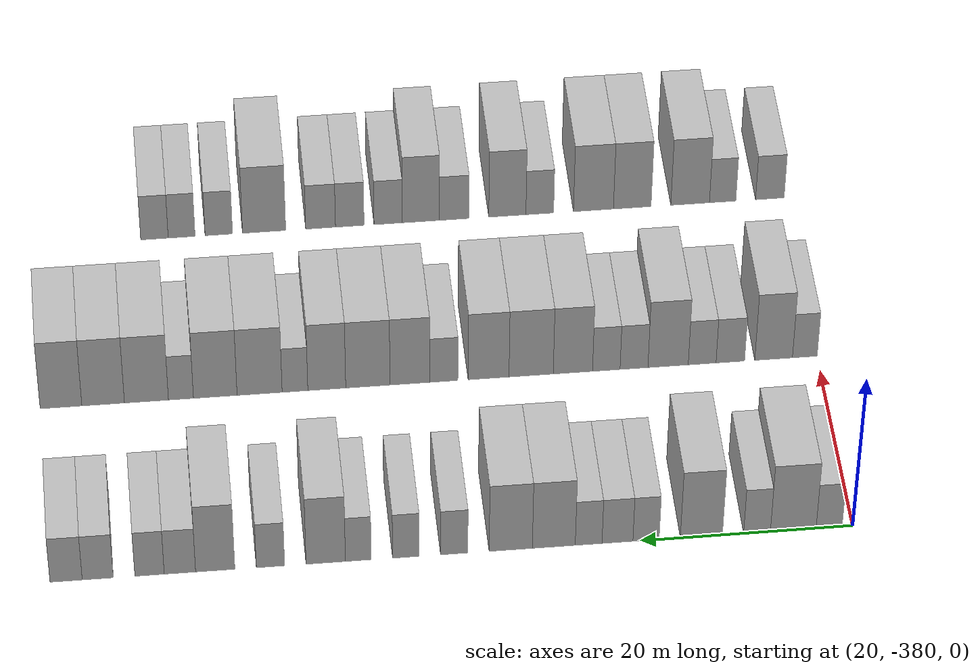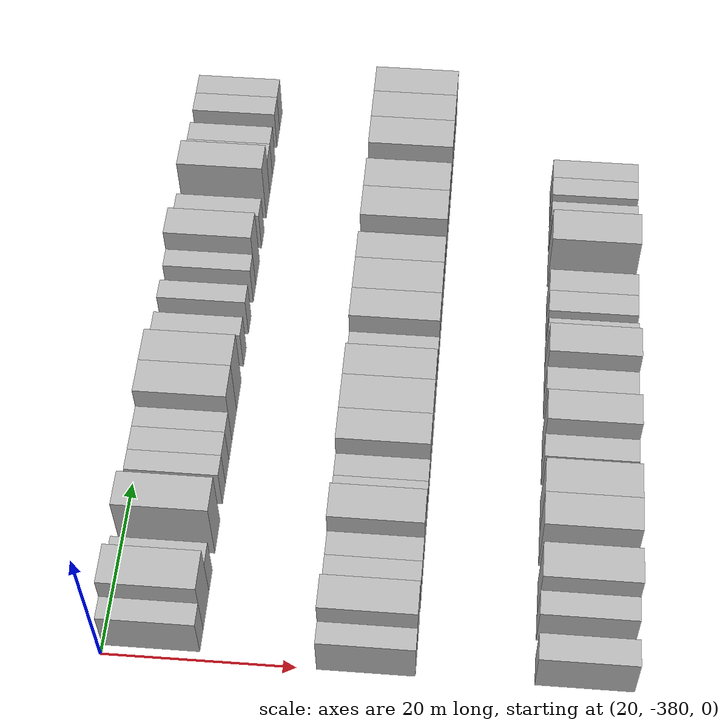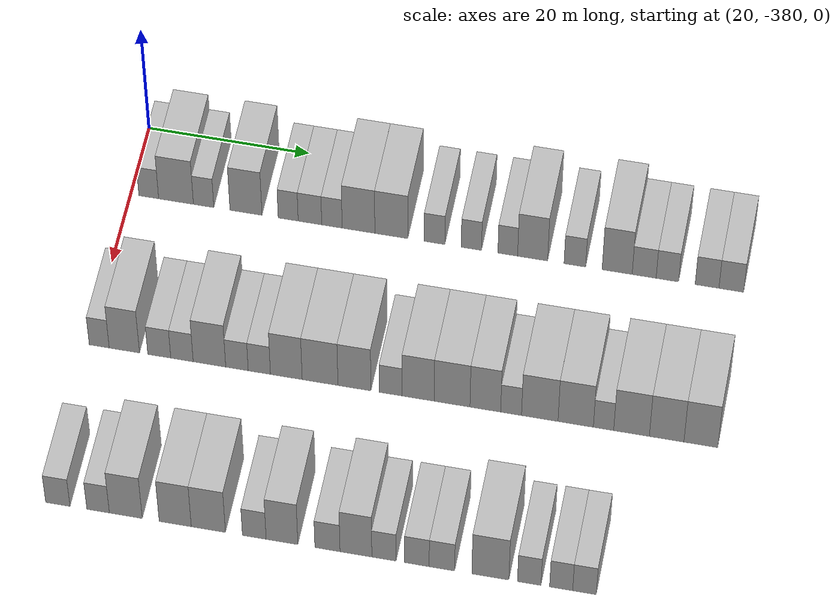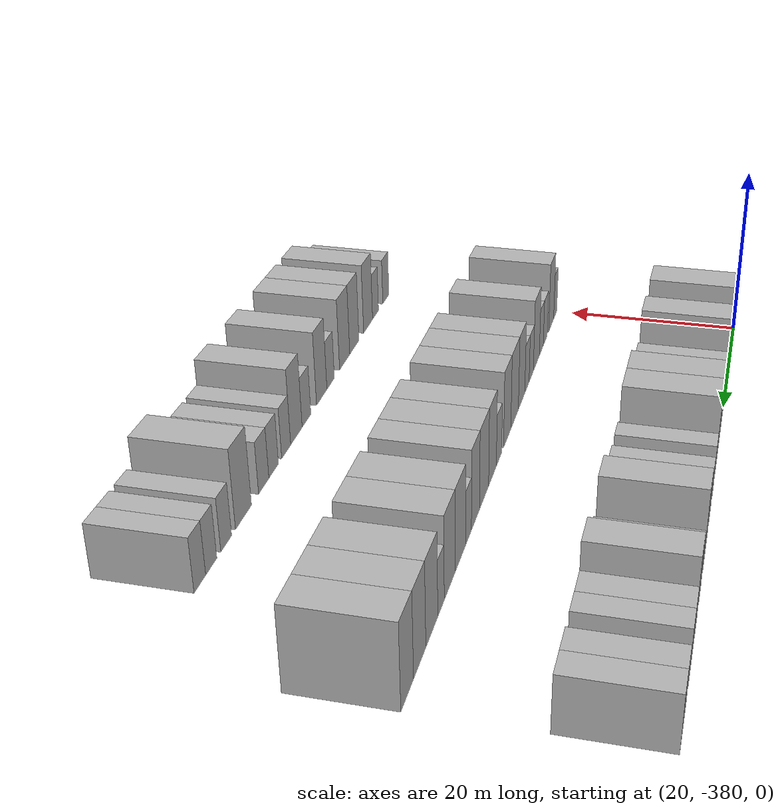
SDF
<sdf version="1.6">
 <world name="default">
  <model name="building_1">
   <static>1</static>
   <pose>25.0000 -377.7746 0 0.000000 0.000000 0.000000</pose>
   <link name="link">
    <pose>0 0 3.00 0 0 0</pose>
    <collision name="collision"><geometry><box><size>10.0000 2.4507 6.0000</size></box></geometry></collision>
    <visual name="visual">
     <cast_shadows>0</cast_shadows>
     <geometry><box><size>10.0000 2.4507 6.0000</size></box></geometry>
     <material>
      <script>
       <uri>model://HANNAS_wall/materials/scripts</uri>
       <uri>model://HANNAS_wall/materials/textures</uri>
       <name>vrc/HANNAS_wall</name>
      </script>
     </material>
    </visual>
   </link>
  </model>
  <model name="building_2">
   <static>1</static>
   <pose>25.0000 -374.3925 0 0.000000 0.000000 0.000000</pose>
   <link name="link">
    <pose>0 0 4.50 0 0 0</pose>
    <collision name="collision"><geometry><box><size>10.0000 4.3136 9.0000</size></box></geometry></collision>
    <visual name="visual">
     <cast_shadows>0</cast_shadows>
     <geometry><box><size>10.0000 4.3136 9.0000</size></box></geometry>
     <material>
      <script>
       <uri>model://HANNAS_wall/materials/scripts</uri>
       <uri>model://HANNAS_wall/materials/textures</uri>
       <name>vrc/HANNAS_wall</name>
      </script>
     </material>
    </visual>
   </link>
  </model>
  <model name="building_3">
   <static>1</static>
   <pose>25.0000 -370.9728 0 0.000000 0.000000 0.000000</pose>
   <link name="link">
    <pose>0 0 3.00 0 0 0</pose>
    <collision name="collision"><geometry><box><size>10.0000 2.5256 6.0000</size></box></geometry></collision>
    <visual name="visual">
     <cast_shadows>0</cast_shadows>
     <geometry><box><size>10.0000 2.5256 6.0000</size></box></geometry>
     <material>
      <script>
       <uri>model://HANNAS_wall/materials/scripts</uri>
       <uri>model://HANNAS_wall/materials/textures</uri>
       <name>vrc/HANNAS_wall</name>
      </script>
     </material>
    </visual>
   </link>
  </model>
  <model name="building_4">
   <static>1</static>
   <pose>25.0000 -365.7302 0 0.000000 0.000000 0.000000</pose>
   <link name="link">
    <pose>0 0 4.50 0 0 0</pose>
    <collision name="collision"><geometry><box><size>10.0000 3.9595 9.0000</size></box></geometry></collision>
    <visual name="visual">
     <cast_shadows>0</cast_shadows>
     <geometry><box><size>10.0000 3.9595 9.0000</size></box></geometry>
     <material>
      <script>
       <uri>model://HANNAS_wall/materials/scripts</uri>
       <uri>model://HANNAS_wall/materials/textures</uri>
       <name>vrc/HANNAS_wall</name>
      </script>
     </material>
    </visual>
   </link>
  </model>
  <model name="building_5">
   <static>1</static>
   <pose>25.0000 -360.5192 0 0.000000 0.000000 0.000000</pose>
   <link name="link">
    <pose>0 0 3.00 0 0 0</pose>
    <collision name="collision"><geometry><box><size>10.0000 2.4626 6.0000</size></box></geometry></collision>
    <visual name="visual">
     <cast_shadows>0</cast_shadows>
     <geometry><box><size>10.0000 2.4626 6.0000</size></box></geometry>
     <material>
      <script>
       <uri>model://HANNAS_wall/materials/scripts</uri>
       <uri>model://HANNAS_wall/materials/textures</uri>
       <name>vrc/HANNAS_wall</name>
      </script>
     </material>
    </visual>
   </link>
  </model>
  <model name="building_6">
   <static>1</static>
   <pose>25.0000 -357.8363 0 0.000000 0.000000 0.000000</pose>
   <link name="link">
    <pose>0 0 3.00 0 0 0</pose>
    <collision name="collision"><geometry><box><size>10.0000 2.9032 6.0000</size></box></geometry></collision>
    <visual name="visual">
     <cast_shadows>0</cast_shadows>
     <geometry><box><size>10.0000 2.9032 6.0000</size></box></geometry>
     <material>
      <script>
       <uri>model://HANNAS_wall/materials/scripts</uri>
       <uri>model://HANNAS_wall/materials/textures</uri>
       <name>vrc/HANNAS_wall</name>
      </script>
     </material>
    </visual>
   </link>
  </model>
  <model name="building_7">
   <static>1</static>
   <pose>25.0000 -355.1290 0 0.000000 0.000000 0.000000</pose>
   <link name="link">
    <pose>0 0 3.00 0 0 0</pose>
    <collision name="collision"><geometry><box><size>10.0000 2.5115 6.0000</size></box></geometry></collision>
    <visual name="visual">
     <cast_shadows>0</cast_shadows>
     <geometry><box><size>10.0000 2.5115 6.0000</size></box></geometry>
     <material>
      <script>
       <uri>model://HANNAS_wall/materials/scripts</uri>
       <uri>model://HANNAS_wall/materials/textures</uri>
       <name>vrc/HANNAS_wall</name>
      </script>
     </material>
    </visual>
   </link>
  </model>
  <model name="building_8">
   <static>1</static>
   <pose>25.0000 -351.8616 0 0.000000 0.000000 0.000000</pose>
   <link name="link">
    <pose>0 0 4.50 0 0 0</pose>
    <collision name="collision"><geometry><box><size>10.0000 4.0233 9.0000</size></box></geometry></collision>
    <visual name="visual">
     <cast_shadows>0</cast_shadows>
     <geometry><box><size>10.0000 4.0233 9.0000</size></box></geometry>
     <material>
      <script>
       <uri>model://HANNAS_wall/materials/scripts</uri>
       <uri>model://HANNAS_wall/materials/textures</uri>
       <name>vrc/HANNAS_wall</name>
      </script>
     </material>
    </visual>
   </link>
  </model>
  <model name="building_9">
   <static>1</static>
   <pose>25.0000 -347.8291 0 0.000000 0.000000 0.000000</pose>
   <link name="link">
    <pose>0 0 4.50 0 0 0</pose>
    <collision name="collision"><geometry><box><size>10.0000 4.0415 9.0000</size></box></geometry></collision>
    <visual name="visual">
     <cast_shadows>0</cast_shadows>
     <geometry><box><size>10.0000 4.0415 9.0000</size></box></geometry>
     <material>
      <script>
       <uri>model://HANNAS_wall/materials/scripts</uri>
       <uri>model://HANNAS_wall/materials/textures</uri>
       <name>vrc/HANNAS_wall</name>
      </script>
     </material>
    </visual>
   </link>
  </model>
  <model name="building_10">
   <static>1</static>
   <pose>25.0000 -342.5372 0 0.000000 0.000000 0.000000</pose>
   <link name="link">
    <pose>0 0 3.00 0 0 0</pose>
    <collision name="collision"><geometry><box><size>10.0000 2.5423 6.0000</size></box></geometry></collision>
    <visual name="visual">
     <cast_shadows>0</cast_shadows>
     <geometry><box><size>10.0000 2.5423 6.0000</size></box></geometry>
     <material>
      <script>
       <uri>model://HANNAS_wall/materials/scripts</uri>
       <uri>model://HANNAS_wall/materials/textures</uri>
       <name>vrc/HANNAS_wall</name>
      </script>
     </material>
    </visual>
   </link>
  </model>
  <model name="building_11">
   <static>1</static>
   <pose>25.0000 -338.0257 0 0.000000 0.000000 0.000000</pose>
   <link name="link">
    <pose>0 0 3.00 0 0 0</pose>
    <collision name="collision"><geometry><box><size>10.0000 2.4809 6.0000</size></box></geometry></collision>
    <visual name="visual">
     <cast_shadows>0</cast_shadows>
     <geometry><box><size>10.0000 2.4809 6.0000</size></box></geometry>
     <material>
      <script>
       <uri>model://HANNAS_wall/materials/scripts</uri>
       <uri>model://HANNAS_wall/materials/textures</uri>
       <name>vrc/HANNAS_wall</name>
      </script>
     </material>
    </visual>
   </link>
  </model>
  <model name="building_12">
   <static>1</static>
   <pose>25.0000 -333.5848 0 0.000000 0.000000 0.000000</pose>
   <link name="link">
    <pose>0 0 3.00 0 0 0</pose>
    <collision name="collision"><geometry><box><size>10.0000 2.4009 6.0000</size></box></geometry></collision>
    <visual name="visual">
     <cast_shadows>0</cast_shadows>
     <geometry><box><size>10.0000 2.4009 6.0000</size></box></geometry>
     <material>
      <script>
       <uri>model://HANNAS_wall/materials/scripts</uri>
       <uri>model://HANNAS_wall/materials/textures</uri>
       <name>vrc/HANNAS_wall</name>
      </script>
     </material>
    </visual>
   </link>
  </model>
  <model name="building_13">
   <static>1</static>
   <pose>25.0000 -330.5529 0 0.000000 0.000000 0.000000</pose>
   <link name="link">
    <pose>0 0 4.50 0 0 0</pose>
    <collision name="collision"><geometry><box><size>10.0000 3.6629 9.0000</size></box></geometry></collision>
    <visual name="visual">
     <cast_shadows>0</cast_shadows>
     <geometry><box><size>10.0000 3.6629 9.0000</size></box></geometry>
     <material>
      <script>
       <uri>model://HANNAS_wall/materials/scripts</uri>
       <uri>model://HANNAS_wall/materials/textures</uri>
       <name>vrc/HANNAS_wall</name>
      </script>
     </material>
    </visual>
   </link>
  </model>
  <model name="building_14">
   <static>1</static>
   <pose>25.0000 -325.4087 0 0.000000 0.000000 0.000000</pose>
   <link name="link">
    <pose>0 0 3.00 0 0 0</pose>
    <collision name="collision"><geometry><box><size>10.0000 2.6254 6.0000</size></box></geometry></collision>
    <visual name="visual">
     <cast_shadows>0</cast_shadows>
     <geometry><box><size>10.0000 2.6254 6.0000</size></box></geometry>
     <material>
      <script>
       <uri>model://HANNAS_wall/materials/scripts</uri>
       <uri>model://HANNAS_wall/materials/textures</uri>
       <name>vrc/HANNAS_wall</name>
      </script>
     </material>
    </visual>
   </link>
  </model>
  <model name="building_15">
   <static>1</static>
   <pose>25.0000 -320.2736 0 0.000000 0.000000 0.000000</pose>
   <link name="link">
    <pose>0 0 4.50 0 0 0</pose>
    <collision name="collision"><geometry><box><size>10.0000 3.6449 9.0000</size></box></geometry></collision>
    <visual name="visual">
     <cast_shadows>0</cast_shadows>
     <geometry><box><size>10.0000 3.6449 9.0000</size></box></geometry>
     <material>
      <script>
       <uri>model://HANNAS_wall/materials/scripts</uri>
       <uri>model://HANNAS_wall/materials/textures</uri>
       <name>vrc/HANNAS_wall</name>
      </script>
     </material>
    </visual>
   </link>
  </model>
  <model name="building_16">
   <static>1</static>
   <pose>25.0000 -316.9975 0 0.000000 0.000000 0.000000</pose>
   <link name="link">
    <pose>0 0 3.00 0 0 0</pose>
    <collision name="collision"><geometry><box><size>10.0000 2.9072 6.0000</size></box></geometry></collision>
    <visual name="visual">
     <cast_shadows>0</cast_shadows>
     <geometry><box><size>10.0000 2.9072 6.0000</size></box></geometry>
     <material>
      <script>
       <uri>model://HANNAS_wall/materials/scripts</uri>
       <uri>model://HANNAS_wall/materials/textures</uri>
       <name>vrc/HANNAS_wall</name>
      </script>
     </material>
    </visual>
   </link>
  </model>
  <model name="building_17">
   <static>1</static>
   <pose>25.0000 -314.1845 0 0.000000 0.000000 0.000000</pose>
   <link name="link">
    <pose>0 0 3.00 0 0 0</pose>
    <collision name="collision"><geometry><box><size>10.0000 2.7188 6.0000</size></box></geometry></collision>
    <visual name="visual">
     <cast_shadows>0</cast_shadows>
     <geometry><box><size>10.0000 2.7188 6.0000</size></box></geometry>
     <material>
      <script>
       <uri>model://HANNAS_wall/materials/scripts</uri>
       <uri>model://HANNAS_wall/materials/textures</uri>
       <name>vrc/HANNAS_wall</name>
      </script>
     </material>
    </visual>
   </link>
  </model>
  <model name="building_18">
   <static>1</static>
   <pose>25.0000 -309.3861 0 0.000000 0.000000 0.000000</pose>
   <link name="link">
    <pose>0 0 3.00 0 0 0</pose>
    <collision name="collision"><geometry><box><size>10.0000 2.8779 6.0000</size></box></geometry></collision>
    <visual name="visual">
     <cast_shadows>0</cast_shadows>
     <geometry><box><size>10.0000 2.8779 6.0000</size></box></geometry>
     <material>
      <script>
       <uri>model://HANNAS_wall/materials/scripts</uri>
       <uri>model://HANNAS_wall/materials/textures</uri>
       <name>vrc/HANNAS_wall</name>
      </script>
     </material>
    </visual>
   </link>
  </model>
  <model name="building_19">
   <static>1</static>
   <pose>25.0000 -306.4580 0 0.000000 0.000000 0.000000</pose>
   <link name="link">
    <pose>0 0 3.00 0 0 0</pose>
    <collision name="collision"><geometry><box><size>10.0000 2.9784 6.0000</size></box></geometry></collision>
    <visual name="visual">
     <cast_shadows>0</cast_shadows>
     <geometry><box><size>10.0000 2.9784 6.0000</size></box></geometry>
     <material>
      <script>
       <uri>model://HANNAS_wall/materials/scripts</uri>
       <uri>model://HANNAS_wall/materials/textures</uri>
       <name>vrc/HANNAS_wall</name>
      </script>
     </material>
    </visual>
   </link>
  </model>
  <model name="building_191">
   <static>1</static>
   <pose>47.0000 -378.7895 0 0.000000 0.000000 0.000000</pose>
   <link name="link">
    <pose>0 0 3.00 0 0 0</pose>
    <collision name="collision"><geometry><box><size>10.0000 2.4209 6.0000</size></box></geometry></collision>
    <visual name="visual">
     <cast_shadows>0</cast_shadows>
     <geometry><box><size>10.0000 2.4209 6.0000</size></box></geometry>
     <material>
      <script>
       <uri>model://HANNAS_wall/materials/scripts</uri>
       <uri>model://HANNAS_wall/materials/textures</uri>
       <name>vrc/HANNAS_wall</name>
      </script>
     </material>
    </visual>
   </link>
  </model>
  <model name="building_192">
   <static>1</static>
   <pose>47.0000 -375.7392 0 0.000000 0.000000 0.000000</pose>
   <link name="link">
    <pose>0 0 4.50 0 0 0</pose>
    <collision name="collision"><geometry><box><size>10.0000 3.6797 9.0000</size></box></geometry></collision>
    <visual name="visual">
     <cast_shadows>0</cast_shadows>
     <geometry><box><size>10.0000 3.6797 9.0000</size></box></geometry>
     <material>
      <script>
       <uri>model://HANNAS_wall/materials/scripts</uri>
       <uri>model://HANNAS_wall/materials/textures</uri>
       <name>vrc/HANNAS_wall</name>
      </script>
     </material>
    </visual>
   </link>
  </model>
  <model name="building_193">
   <static>1</static>
   <pose>47.0000 -371.5059 0 0.000000 0.000000 0.000000</pose>
   <link name="link">
    <pose>0 0 3.00 0 0 0</pose>
    <collision name="collision"><geometry><box><size>10.0000 2.7868 6.0000</size></box></geometry></collision>
    <visual name="visual">
     <cast_shadows>0</cast_shadows>
     <geometry><box><size>10.0000 2.7868 6.0000</size></box></geometry>
     <material>
      <script>
       <uri>model://HANNAS_wall/materials/scripts</uri>
       <uri>model://HANNAS_wall/materials/textures</uri>
       <name>vrc/HANNAS_wall</name>
      </script>
     </material>
    </visual>
   </link>
  </model>
  <model name="building_194">
   <static>1</static>
   <pose>47.0000 -368.7560 0 0.000000 0.000000 0.000000</pose>
   <link name="link">
    <pose>0 0 3.00 0 0 0</pose>
    <collision name="collision"><geometry><box><size>10.0000 2.7129 6.0000</size></box></geometry></collision>
    <visual name="visual">
     <cast_shadows>0</cast_shadows>
     <geometry><box><size>10.0000 2.7129 6.0000</size></box></geometry>
     <material>
      <script>
       <uri>model://HANNAS_wall/materials/scripts</uri>
       <uri>model://HANNAS_wall/materials/textures</uri>
       <name>vrc/HANNAS_wall</name>
      </script>
     </material>
    </visual>
   </link>
  </model>
  <model name="building_195">
   <static>1</static>
   <pose>47.0000 -365.4335 0 0.000000 0.000000 0.000000</pose>
   <link name="link">
    <pose>0 0 4.50 0 0 0</pose>
    <collision name="collision"><geometry><box><size>10.0000 3.9321 9.0000</size></box></geometry></collision>
    <visual name="visual">
     <cast_shadows>0</cast_shadows>
     <geometry><box><size>10.0000 3.9321 9.0000</size></box></geometry>
     <material>
      <script>
       <uri>model://HANNAS_wall/materials/scripts</uri>
       <uri>model://HANNAS_wall/materials/textures</uri>
       <name>vrc/HANNAS_wall</name>
      </script>
     </material>
    </visual>
   </link>
  </model>
  <model name="building_196">
   <static>1</static>
   <pose>47.0000 -362.1093 0 0.000000 0.000000 0.000000</pose>
   <link name="link">
    <pose>0 0 3.00 0 0 0</pose>
    <collision name="collision"><geometry><box><size>10.0000 2.7163 6.0000</size></box></geometry></collision>
    <visual name="visual">
     <cast_shadows>0</cast_shadows>
     <geometry><box><size>10.0000 2.7163 6.0000</size></box></geometry>
     <material>
      <script>
       <uri>model://HANNAS_wall/materials/scripts</uri>
       <uri>model://HANNAS_wall/materials/textures</uri>
       <name>vrc/HANNAS_wall</name>
      </script>
     </material>
    </visual>
   </link>
  </model>
  <model name="building_197">
   <static>1</static>
   <pose>47.0000 -359.4117 0 0.000000 0.000000 0.000000</pose>
   <link name="link">
    <pose>0 0 3.00 0 0 0</pose>
    <collision name="collision"><geometry><box><size>10.0000 2.6789 6.0000</size></box></geometry></collision>
    <visual name="visual">
     <cast_shadows>0</cast_shadows>
     <geometry><box><size>10.0000 2.6789 6.0000</size></box></geometry>
     <material>
      <script>
       <uri>model://HANNAS_wall/materials/scripts</uri>
       <uri>model://HANNAS_wall/materials/textures</uri>
       <name>vrc/HANNAS_wall</name>
      </script>
     </material>
    </visual>
   </link>
  </model>
  <model name="building_198">
   <static>1</static>
   <pose>47.0000 -356.1617 0 0.000000 0.000000 0.000000</pose>
   <link name="link">
    <pose>0 0 4.50 0 0 0</pose>
    <collision name="collision"><geometry><box><size>10.0000 3.8210 9.0000</size></box></geometry></collision>
    <visual name="visual">
     <cast_shadows>0</cast_shadows>
     <geometry><box><size>10.0000 3.8210 9.0000</size></box></geometry>
     <material>
      <script>
       <uri>model://HANNAS_wall/materials/scripts</uri>
       <uri>model://HANNAS_wall/materials/textures</uri>
       <name>vrc/HANNAS_wall</name>
      </script>
     </material>
    </visual>
   </link>
  </model>
  <model name="building_199">
   <static>1</static>
   <pose>47.0000 -352.1010 0 0.000000 0.000000 0.000000</pose>
   <link name="link">
    <pose>0 0 4.50 0 0 0</pose>
    <collision name="collision"><geometry><box><size>10.0000 4.3005 9.0000</size></box></geometry></collision>
    <visual name="visual">
     <cast_shadows>0</cast_shadows>
     <geometry><box><size>10.0000 4.3005 9.0000</size></box></geometry>
     <material>
      <script>
       <uri>model://HANNAS_wall/materials/scripts</uri>
       <uri>model://HANNAS_wall/materials/textures</uri>
       <name>vrc/HANNAS_wall</name>
      </script>
     </material>
    </visual>
   </link>
  </model>
  <model name="building_200">
   <static>1</static>
   <pose>47.0000 -347.9721 0 0.000000 0.000000 0.000000</pose>
   <link name="link">
    <pose>0 0 4.50 0 0 0</pose>
    <collision name="collision"><geometry><box><size>10.0000 3.9573 9.0000</size></box></geometry></collision>
    <visual name="visual">
     <cast_shadows>0</cast_shadows>
     <geometry><box><size>10.0000 3.9573 9.0000</size></box></geometry>
     <material>
      <script>
       <uri>model://HANNAS_wall/materials/scripts</uri>
       <uri>model://HANNAS_wall/materials/textures</uri>
       <name>vrc/HANNAS_wall</name>
      </script>
     </material>
    </visual>
   </link>
  </model>
  <model name="building_201">
   <static>1</static>
   <pose>47.0000 -343.6298 0 0.000000 0.000000 0.000000</pose>
   <link name="link">
    <pose>0 0 3.00 0 0 0</pose>
    <collision name="collision"><geometry><box><size>10.0000 2.7273 6.0000</size></box></geometry></collision>
    <visual name="visual">
     <cast_shadows>0</cast_shadows>
     <geometry><box><size>10.0000 2.7273 6.0000</size></box></geometry>
     <material>
      <script>
       <uri>model://HANNAS_wall/materials/scripts</uri>
       <uri>model://HANNAS_wall/materials/textures</uri>
       <name>vrc/HANNAS_wall</name>
      </script>
     </material>
    </visual>
   </link>
  </model>
  <model name="building_202">
   <static>1</static>
   <pose>47.0000 -340.3457 0 0.000000 0.000000 0.000000</pose>
   <link name="link">
    <pose>0 0 4.50 0 0 0</pose>
    <collision name="collision"><geometry><box><size>10.0000 3.8408 9.0000</size></box></geometry></collision>
    <visual name="visual">
     <cast_shadows>0</cast_shadows>
     <geometry><box><size>10.0000 3.8408 9.0000</size></box></geometry>
     <material>
      <script>
       <uri>model://HANNAS_wall/materials/scripts</uri>
       <uri>model://HANNAS_wall/materials/textures</uri>
       <name>vrc/HANNAS_wall</name>
      </script>
     </material>
    </visual>
   </link>
  </model>
  <model name="building_203">
   <static>1</static>
   <pose>47.0000 -336.2853 0 0.000000 0.000000 0.000000</pose>
   <link name="link">
    <pose>0 0 4.50 0 0 0</pose>
    <collision name="collision"><geometry><box><size>10.0000 4.2800 9.0000</size></box></geometry></collision>
    <visual name="visual">
     <cast_shadows>0</cast_shadows>
     <geometry><box><size>10.0000 4.2800 9.0000</size></box></geometry>
     <material>
      <script>
       <uri>model://HANNAS_wall/materials/scripts</uri>
       <uri>model://HANNAS_wall/materials/textures</uri>
       <name>vrc/HANNAS_wall</name>
      </script>
     </material>
    </visual>
   </link>
  </model>
  <model name="building_204">
   <static>1</static>
   <pose>47.0000 -332.3157 0 0.000000 0.000000 0.000000</pose>
   <link name="link">
    <pose>0 0 4.50 0 0 0</pose>
    <collision name="collision"><geometry><box><size>10.0000 3.6591 9.0000</size></box></geometry></collision>
    <visual name="visual">
     <cast_shadows>0</cast_shadows>
     <geometry><box><size>10.0000 3.6591 9.0000</size></box></geometry>
     <material>
      <script>
       <uri>model://HANNAS_wall/materials/scripts</uri>
       <uri>model://HANNAS_wall/materials/textures</uri>
       <name>vrc/HANNAS_wall</name>
      </script>
     </material>
    </visual>
   </link>
  </model>
  <model name="building_205">
   <static>1</static>
   <pose>47.0000 -329.2459 0 0.000000 0.000000 0.000000</pose>
   <link name="link">
    <pose>0 0 3.00 0 0 0</pose>
    <collision name="collision"><geometry><box><size>10.0000 2.4806 6.0000</size></box></geometry></collision>
    <visual name="visual">
     <cast_shadows>0</cast_shadows>
     <geometry><box><size>10.0000 2.4806 6.0000</size></box></geometry>
     <material>
      <script>
       <uri>model://HANNAS_wall/materials/scripts</uri>
       <uri>model://HANNAS_wall/materials/textures</uri>
       <name>vrc/HANNAS_wall</name>
      </script>
     </material>
    </visual>
   </link>
  </model>
  <model name="building_206">
   <static>1</static>
   <pose>47.0000 -325.8342 0 0.000000 0.000000 0.000000</pose>
   <link name="link">
    <pose>0 0 4.50 0 0 0</pose>
    <collision name="collision"><geometry><box><size>10.0000 4.3428 9.0000</size></box></geometry></collision>
    <visual name="visual">
     <cast_shadows>0</cast_shadows>
     <geometry><box><size>10.0000 4.3428 9.0000</size></box></geometry>
     <material>
      <script>
       <uri>model://HANNAS_wall/materials/scripts</uri>
       <uri>model://HANNAS_wall/materials/textures</uri>
       <name>vrc/HANNAS_wall</name>
      </script>
     </material>
    </visual>
   </link>
  </model>
  <model name="building_207">
   <static>1</static>
   <pose>47.0000 -321.5636 0 0.000000 0.000000 0.000000</pose>
   <link name="link">
    <pose>0 0 4.50 0 0 0</pose>
    <collision name="collision"><geometry><box><size>10.0000 4.1983 9.0000</size></box></geometry></collision>
    <visual name="visual">
     <cast_shadows>0</cast_shadows>
     <geometry><box><size>10.0000 4.1983 9.0000</size></box></geometry>
     <material>
      <script>
       <uri>model://HANNAS_wall/materials/scripts</uri>
       <uri>model://HANNAS_wall/materials/textures</uri>
       <name>vrc/HANNAS_wall</name>
      </script>
     </material>
    </visual>
   </link>
  </model>
  <model name="building_208">
   <static>1</static>
   <pose>47.0000 -318.2620 0 0.000000 0.000000 0.000000</pose>
   <link name="link">
    <pose>0 0 3.00 0 0 0</pose>
    <collision name="collision"><geometry><box><size>10.0000 2.4049 6.0000</size></box></geometry></collision>
    <visual name="visual">
     <cast_shadows>0</cast_shadows>
     <geometry><box><size>10.0000 2.4049 6.0000</size></box></geometry>
     <material>
      <script>
       <uri>model://HANNAS_wall/materials/scripts</uri>
       <uri>model://HANNAS_wall/materials/textures</uri>
       <name>vrc/HANNAS_wall</name>
      </script>
     </material>
    </visual>
   </link>
  </model>
  <model name="building_209">
   <static>1</static>
   <pose>47.0000 -314.9466 0 0.000000 0.000000 0.000000</pose>
   <link name="link">
    <pose>0 0 4.50 0 0 0</pose>
    <collision name="collision"><geometry><box><size>10.0000 4.2259 9.0000</size></box></geometry></collision>
    <visual name="visual">
     <cast_shadows>0</cast_shadows>
     <geometry><box><size>10.0000 4.2259 9.0000</size></box></geometry>
     <material>
      <script>
       <uri>model://HANNAS_wall/materials/scripts</uri>
       <uri>model://HANNAS_wall/materials/textures</uri>
       <name>vrc/HANNAS_wall</name>
      </script>
     </material>
    </visual>
   </link>
  </model>
  <model name="building_210">
   <static>1</static>
   <pose>47.0000 -310.7907 0 0.000000 0.000000 0.000000</pose>
   <link name="link">
    <pose>0 0 4.50 0 0 0</pose>
    <collision name="collision"><geometry><box><size>10.0000 4.0861 9.0000</size></box></geometry></collision>
    <visual name="visual">
     <cast_shadows>0</cast_shadows>
     <geometry><box><size>10.0000 4.0861 9.0000</size></box></geometry>
     <material>
      <script>
       <uri>model://HANNAS_wall/materials/scripts</uri>
       <uri>model://HANNAS_wall/materials/textures</uri>
       <name>vrc/HANNAS_wall</name>
      </script>
     </material>
    </visual>
   </link>
  </model>
  <model name="building_211">
   <static>1</static>
   <pose>47.0000 -306.7496 0 0.000000 0.000000 0.000000</pose>
   <link name="link">
    <pose>0 0 4.50 0 0 0</pose>
    <collision name="collision"><geometry><box><size>10.0000 3.9961 9.0000</size></box></geometry></collision>
    <visual name="visual">
     <cast_shadows>0</cast_shadows>
     <geometry><box><size>10.0000 3.9961 9.0000</size></box></geometry>
     <material>
      <script>
       <uri>model://HANNAS_wall/materials/scripts</uri>
       <uri>model://HANNAS_wall/materials/textures</uri>
       <name>vrc/HANNAS_wall</name>
      </script>
     </material>
    </visual>
   </link>
  </model>
  <model name="building_376">
   <static>1</static>
   <pose>69.0000 -378.5574 0 0.000000 0.000000 0.000000</pose>
   <link name="link">
    <pose>0 0 3.00 0 0 0</pose>
    <collision name="collision"><geometry><box><size>10.0000 2.8852 6.0000</size></box></geometry></collision>
    <visual name="visual">
     <cast_shadows>0</cast_shadows>
     <geometry><box><size>10.0000 2.8852 6.0000</size></box></geometry>
     <material>
      <script>
       <uri>model://HANNAS_wall/materials/scripts</uri>
       <uri>model://HANNAS_wall/materials/textures</uri>
       <name>vrc/HANNAS_wall</name>
      </script>
     </material>
    </visual>
   </link>
  </model>
  <model name="building_377">
   <static>1</static>
   <pose>69.0000 -373.7817 0 0.000000 0.000000 0.000000</pose>
   <link name="link">
    <pose>0 0 3.00 0 0 0</pose>
    <collision name="collision"><geometry><box><size>10.0000 2.6663 6.0000</size></box></geometry></collision>
    <visual name="visual">
     <cast_shadows>0</cast_shadows>
     <geometry><box><size>10.0000 2.6663 6.0000</size></box></geometry>
     <material>
      <script>
       <uri>model://HANNAS_wall/materials/scripts</uri>
       <uri>model://HANNAS_wall/materials/textures</uri>
       <name>vrc/HANNAS_wall</name>
      </script>
     </material>
    </visual>
   </link>
  </model>
  <model name="building_378">
   <static>1</static>
   <pose>69.0000 -370.4988 0 0.000000 0.000000 0.000000</pose>
   <link name="link">
    <pose>0 0 4.50 0 0 0</pose>
    <collision name="collision"><geometry><box><size>10.0000 3.8993 9.0000</size></box></geometry></collision>
    <visual name="visual">
     <cast_shadows>0</cast_shadows>
     <geometry><box><size>10.0000 3.8993 9.0000</size></box></geometry>
     <material>
      <script>
       <uri>model://HANNAS_wall/materials/scripts</uri>
       <uri>model://HANNAS_wall/materials/textures</uri>
       <name>vrc/HANNAS_wall</name>
      </script>
     </material>
    </visual>
   </link>
  </model>
  <model name="building_379">
   <static>1</static>
   <pose>69.0000 -364.6531 0 0.000000 0.000000 0.000000</pose>
   <link name="link">
    <pose>0 0 4.50 0 0 0</pose>
    <collision name="collision"><geometry><box><size>10.0000 3.7922 9.0000</size></box></geometry></collision>
    <visual name="visual">
     <cast_shadows>0</cast_shadows>
     <geometry><box><size>10.0000 3.7922 9.0000</size></box></geometry>
     <material>
      <script>
       <uri>model://HANNAS_wall/materials/scripts</uri>
       <uri>model://HANNAS_wall/materials/textures</uri>
       <name>vrc/HANNAS_wall</name>
      </script>
     </material>
    </visual>
   </link>
  </model>
  <model name="building_380">
   <static>1</static>
   <pose>69.0000 -360.7429 0 0.000000 0.000000 0.000000</pose>
   <link name="link">
    <pose>0 0 4.50 0 0 0</pose>
    <collision name="collision"><geometry><box><size>10.0000 4.0283 9.0000</size></box></geometry></collision>
    <visual name="visual">
     <cast_shadows>0</cast_shadows>
     <geometry><box><size>10.0000 4.0283 9.0000</size></box></geometry>
     <material>
      <script>
       <uri>model://HANNAS_wall/materials/scripts</uri>
       <uri>model://HANNAS_wall/materials/textures</uri>
       <name>vrc/HANNAS_wall</name>
      </script>
     </material>
    </visual>
   </link>
  </model>
  <model name="building_381">
   <static>1</static>
   <pose>69.0000 -355.3356 0 0.000000 0.000000 0.000000</pose>
   <link name="link">
    <pose>0 0 3.00 0 0 0</pose>
    <collision name="collision"><geometry><box><size>10.0000 2.7863 6.0000</size></box></geometry></collision>
    <visual name="visual">
     <cast_shadows>0</cast_shadows>
     <geometry><box><size>10.0000 2.7863 6.0000</size></box></geometry>
     <material>
      <script>
       <uri>model://HANNAS_wall/materials/scripts</uri>
       <uri>model://HANNAS_wall/materials/textures</uri>
       <name>vrc/HANNAS_wall</name>
      </script>
     </material>
    </visual>
   </link>
  </model>
  <model name="building_382">
   <static>1</static>
   <pose>69.0000 -352.0781 0 0.000000 0.000000 0.000000</pose>
   <link name="link">
    <pose>0 0 4.50 0 0 0</pose>
    <collision name="collision"><geometry><box><size>10.0000 3.7285 9.0000</size></box></geometry></collision>
    <visual name="visual">
     <cast_shadows>0</cast_shadows>
     <geometry><box><size>10.0000 3.7285 9.0000</size></box></geometry>
     <material>
      <script>
       <uri>model://HANNAS_wall/materials/scripts</uri>
       <uri>model://HANNAS_wall/materials/textures</uri>
       <name>vrc/HANNAS_wall</name>
      </script>
     </material>
    </visual>
   </link>
  </model>
  <model name="building_383">
   <static>1</static>
   <pose>69.0000 -346.7433 0 0.000000 0.000000 0.000000</pose>
   <link name="link">
    <pose>0 0 3.00 0 0 0</pose>
    <collision name="collision"><geometry><box><size>10.0000 2.9411 6.0000</size></box></geometry></collision>
    <visual name="visual">
     <cast_shadows>0</cast_shadows>
     <geometry><box><size>10.0000 2.9411 6.0000</size></box></geometry>
     <material>
      <script>
       <uri>model://HANNAS_wall/materials/scripts</uri>
       <uri>model://HANNAS_wall/materials/textures</uri>
       <name>vrc/HANNAS_wall</name>
      </script>
     </material>
    </visual>
   </link>
  </model>
  <model name="building_384">
   <static>1</static>
   <pose>69.0000 -343.4083 0 0.000000 0.000000 0.000000</pose>
   <link name="link">
    <pose>0 0 4.50 0 0 0</pose>
    <collision name="collision"><geometry><box><size>10.0000 3.7291 9.0000</size></box></geometry></collision>
    <visual name="visual">
     <cast_shadows>0</cast_shadows>
     <geometry><box><size>10.0000 3.7291 9.0000</size></box></geometry>
     <material>
      <script>
       <uri>model://HANNAS_wall/materials/scripts</uri>
       <uri>model://HANNAS_wall/materials/textures</uri>
       <name>vrc/HANNAS_wall</name>
      </script>
     </material>
    </visual>
   </link>
  </model>
  <model name="building_385">
   <static>1</static>
   <pose>69.0000 -340.1259 0 0.000000 0.000000 0.000000</pose>
   <link name="link">
    <pose>0 0 3.00 0 0 0</pose>
    <collision name="collision"><geometry><box><size>10.0000 2.8356 6.0000</size></box></geometry></collision>
    <visual name="visual">
     <cast_shadows>0</cast_shadows>
     <geometry><box><size>10.0000 2.8356 6.0000</size></box></geometry>
     <material>
      <script>
       <uri>model://HANNAS_wall/materials/scripts</uri>
       <uri>model://HANNAS_wall/materials/textures</uri>
       <name>vrc/HANNAS_wall</name>
      </script>
     </material>
    </visual>
   </link>
  </model>
  <model name="building_386">
   <static>1</static>
   <pose>69.0000 -336.2796 0 0.000000 0.000000 0.000000</pose>
   <link name="link">
    <pose>0 0 3.00 0 0 0</pose>
    <collision name="collision"><geometry><box><size>10.0000 2.8570 6.0000</size></box></geometry></collision>
    <visual name="visual">
     <cast_shadows>0</cast_shadows>
     <geometry><box><size>10.0000 2.8570 6.0000</size></box></geometry>
     <material>
      <script>
       <uri>model://HANNAS_wall/materials/scripts</uri>
       <uri>model://HANNAS_wall/materials/textures</uri>
       <name>vrc/HANNAS_wall</name>
      </script>
     </material>
    </visual>
   </link>
  </model>
  <model name="building_387">
   <static>1</static>
   <pose>69.0000 -333.3630 0 0.000000 0.000000 0.000000</pose>
   <link name="link">
    <pose>0 0 3.00 0 0 0</pose>
    <collision name="collision"><geometry><box><size>10.0000 2.9763 6.0000</size></box></geometry></collision>
    <visual name="visual">
     <cast_shadows>0</cast_shadows>
     <geometry><box><size>10.0000 2.9763 6.0000</size></box></geometry>
     <material>
      <script>
       <uri>model://HANNAS_wall/materials/scripts</uri>
       <uri>model://HANNAS_wall/materials/textures</uri>
       <name>vrc/HANNAS_wall</name>
      </script>
     </material>
    </visual>
   </link>
  </model>
  <model name="building_388">
   <static>1</static>
   <pose>69.0000 -327.7211 0 0.000000 0.000000 0.000000</pose>
   <link name="link">
    <pose>0 0 4.50 0 0 0</pose>
    <collision name="collision"><geometry><box><size>10.0000 4.3075 9.0000</size></box></geometry></collision>
    <visual name="visual">
     <cast_shadows>0</cast_shadows>
     <geometry><box><size>10.0000 4.3075 9.0000</size></box></geometry>
     <material>
      <script>
       <uri>model://HANNAS_wall/materials/scripts</uri>
       <uri>model://HANNAS_wall/materials/textures</uri>
       <name>vrc/HANNAS_wall</name>
      </script>
     </material>
    </visual>
   </link>
  </model>
  <model name="building_389">
   <static>1</static>
   <pose>69.0000 -323.2025 0 0.000000 0.000000 0.000000</pose>
   <link name="link">
    <pose>0 0 3.00 0 0 0</pose>
    <collision name="collision"><geometry><box><size>10.0000 2.7296 6.0000</size></box></geometry></collision>
    <visual name="visual">
     <cast_shadows>0</cast_shadows>
     <geometry><box><size>10.0000 2.7296 6.0000</size></box></geometry>
     <material>
      <script>
       <uri>model://HANNAS_wall/materials/scripts</uri>
       <uri>model://HANNAS_wall/materials/textures</uri>
       <name>vrc/HANNAS_wall</name>
      </script>
     </material>
    </visual>
   </link>
  </model>
  <model name="building_390">
   <static>1</static>
   <pose>69.0000 -319.4996 0 0.000000 0.000000 0.000000</pose>
   <link name="link">
    <pose>0 0 3.00 0 0 0</pose>
    <collision name="collision"><geometry><box><size>10.0000 2.6763 6.0000</size></box></geometry></collision>
    <visual name="visual">
     <cast_shadows>0</cast_shadows>
     <geometry><box><size>10.0000 2.6763 6.0000</size></box></geometry>
     <material>
      <script>
       <uri>model://HANNAS_wall/materials/scripts</uri>
       <uri>model://HANNAS_wall/materials/textures</uri>
       <name>vrc/HANNAS_wall</name>
      </script>
     </material>
    </visual>
   </link>
  </model>
  <model name="building_391">
   <static>1</static>
   <pose>69.0000 -316.7976 0 0.000000 0.000000 0.000000</pose>
   <link name="link">
    <pose>0 0 3.00 0 0 0</pose>
    <collision name="collision"><geometry><box><size>10.0000 2.7277 6.0000</size></box></geometry></collision>
    <visual name="visual">
     <cast_shadows>0</cast_shadows>
     <geometry><box><size>10.0000 2.7277 6.0000</size></box></geometry>
     <material>
      <script>
       <uri>model://HANNAS_wall/materials/scripts</uri>
       <uri>model://HANNAS_wall/materials/textures</uri>
       <name>vrc/HANNAS_wall</name>
      </script>
     </material>
    </visual>
   </link>
  </model>
 </world>
</sdf>
